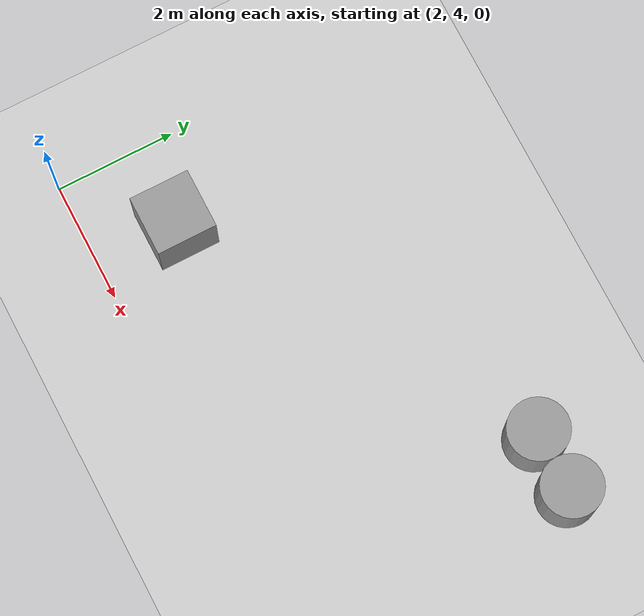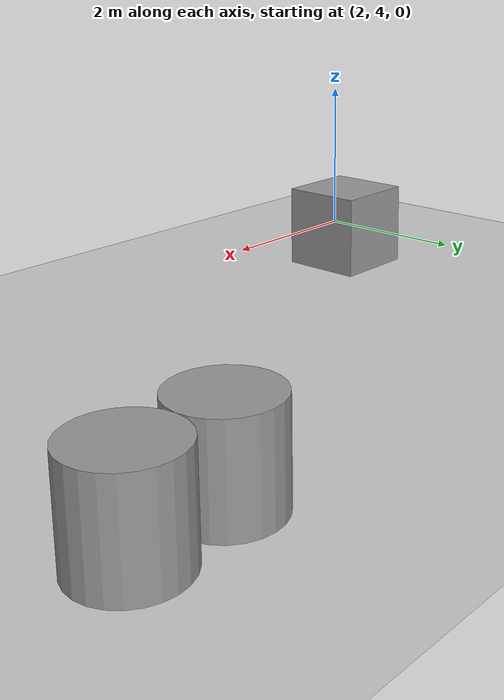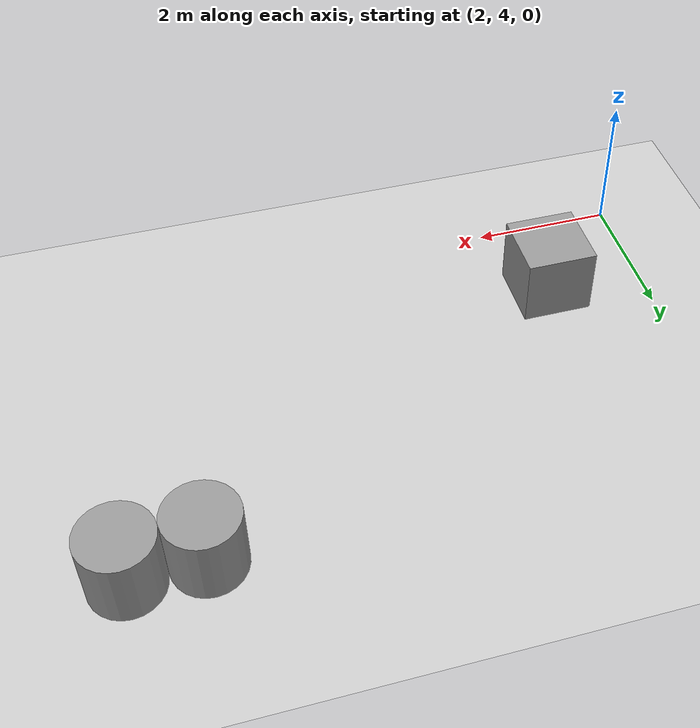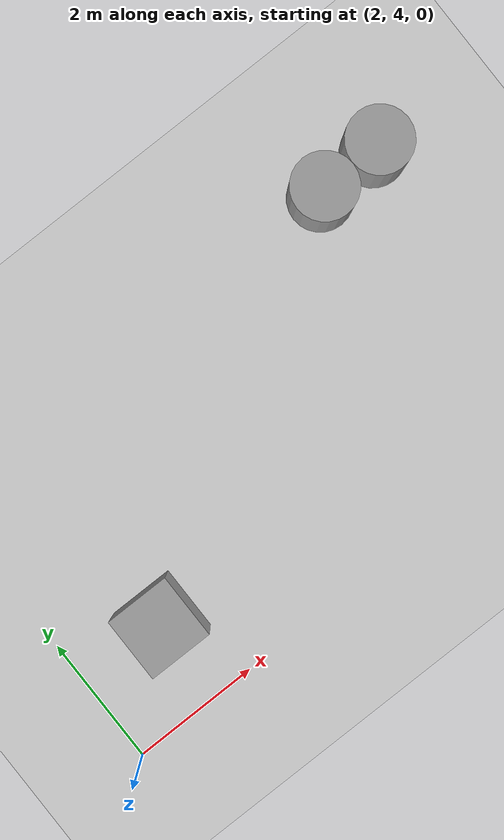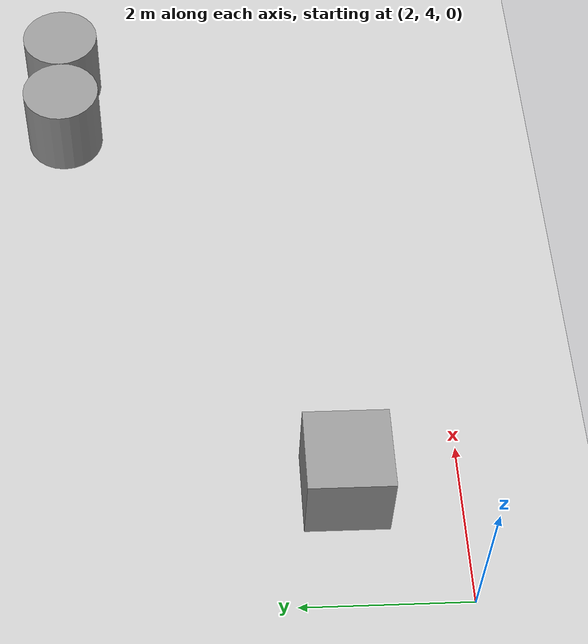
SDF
<sdf version="1.7">
 <world name="default">
  <model name="ground_plane">
   <static>1</static>
   <link name="link">
    <collision name="collision">
     <geometry><plane><normal>0 0 1</normal><size>100 100</size></plane></geometry>
     <surface><friction><ode><mu>100</mu><mu2>50</mu2></ode></friction></surface>
    </collision>
    <visual name="visual">
     <cast_shadows>0</cast_shadows>
     <geometry><plane><normal>0 0 1</normal><size>100 100</size></plane></geometry>
     <material>
      <script><uri>file://media/materials/scripts/gazebo.material</uri><name>Gazebo/Grey</name></script>
     </material>
    </visual>
   </link>
  </model>
  <model name="unit_cylinder">
   <pose>9.05513 8.76084 0.499997 -3e-06 -1e-06 0.002292</pose>
   <link name="link">
    <inertial>
     <mass>1</mass>
     <inertia><ixx>0.145833</ixx><ixy>0</ixy><ixz>0</ixz><iyy>0.145833</iyy><iyz>0</iyz><izz>0.125</izz></inertia>
    </inertial>
    <collision name="collision">
     <geometry><cylinder><radius>0.5</radius><length>1</length></cylinder></geometry>
    </collision>
    <visual name="visual">
     <geometry><cylinder><radius>0.5</radius><length>1</length></cylinder></geometry>
     <material>
      <script><name>Gazebo/Grey</name><uri>file://media/materials/scripts/gazebo.material</uri></script>
     </material>
    </visual>
   </link>
  </model>
  <model name="unit_cylinder_0">
   <pose>10.0546 8.79345 0.499998 2e-06 -3e-06 0.001133</pose>
   <link name="link">
    <inertial>
     <mass>1</mass>
     <inertia><ixx>0.145833</ixx><ixy>0</ixy><ixz>0</ixz><iyy>0.145833</iyy><iyz>0</iyz><izz>0.125</izz></inertia>
    </inertial>
    <collision name="collision">
     <geometry><cylinder><radius>0.5</radius><length>1</length></cylinder></geometry>
    </collision>
    <visual name="visual">
     <geometry><cylinder><radius>0.5</radius><length>1</length></cylinder></geometry>
     <material>
      <script><name>Gazebo/Grey</name><uri>file://media/materials/scripts/gazebo.material</uri></script>
     </material>
    </visual>
   </link>
  </model>
  <model name="unit_box_1">
   <pose>3.45084 5.37038 0.5 -1e-06 0 -3e-06</pose>
   <link name="link">
    <inertial>
     <mass>1</mass>
     <inertia>
      <ixx>0.166667</ixx>
      <ixy>0</ixy>
      <ixz>0</ixz>
      <iyy>0.166667</iyy>
      <iyz>0</iyz>
      <izz>0.166667</izz>
     </inertia>
    </inertial>
    <collision name="collision"><geometry><box><size>1 1 1</size></box></geometry></collision>
    <visual name="visual">
     <geometry><box><size>1 1 1</size></box></geometry>
     <material>
      <script><name>Gazebo/Grey</name><uri>file://media/materials/scripts/gazebo.material</uri></script>
     </material>
    </visual>
   </link>
  </model>
 </world>
</sdf>
